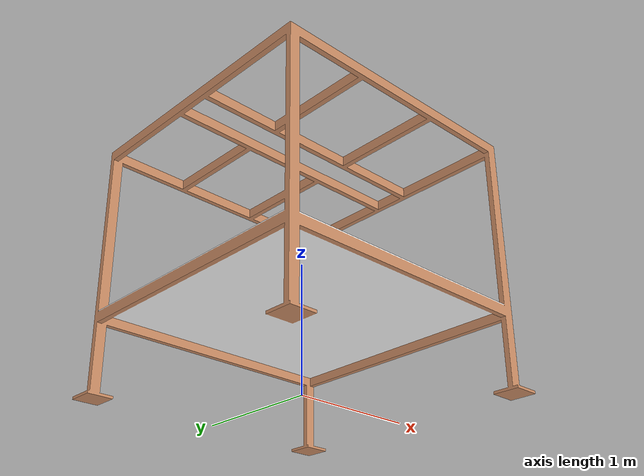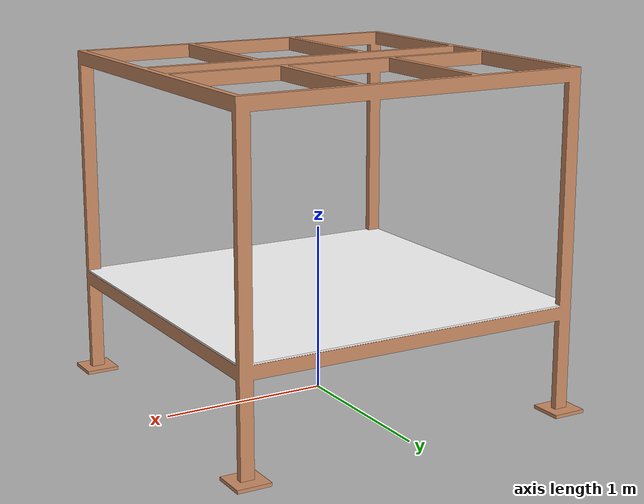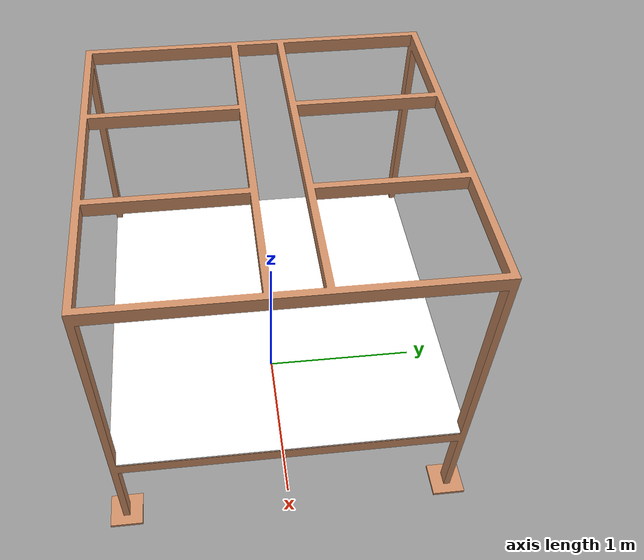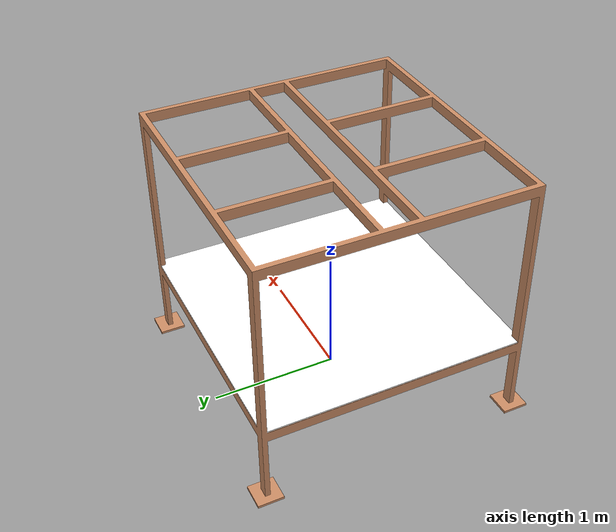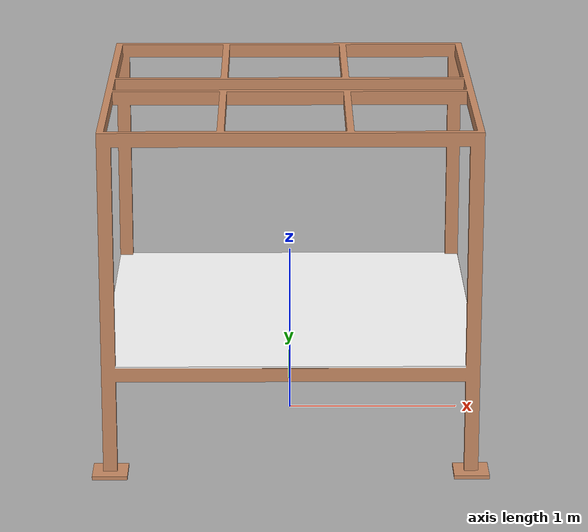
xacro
<?xml version="1.0" ?>
<robot name="cell" xmlns:xacro="http://ros.org/wiki/xacro">

  <!-- World frame (for Gazebo) -->
  <link name="cell/world"/>

  <link name="cell_link">
      <inertial>
          <mass value="500" />
          <origin xyz="0 0 0" rpy="0 0 0" />
          <inertia ixx="1" ixy="0" ixz="0" iyy="1" iyz="0" izz="1" />
      </inertial>
      <visual name="visual">
        <geometry>
          <mesh filename="package://kuka_control/models/cell/meshes/AgilusStructure.dae"/>
        </geometry>
      </visual>
      <collision name="collision">
        <geometry>
          <mesh filename="package://kuka_control/models/cell/meshes/AgilusStructure.dae"/>
        </geometry>
      </collision>
  </link>

  <!-- Cell fixed to world frame  -->
  <joint name="base_joint" type="fixed">
      <origin xyz="0.0 0.0 0.0" rpy="0 0 0" />
      <parent link="cell/world" />
      <child link="cell_link"/>
  </joint>

  <gazebo>
    <static>true</static>
  </gazebo>

</robot>
